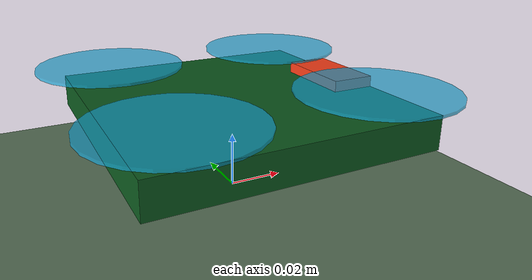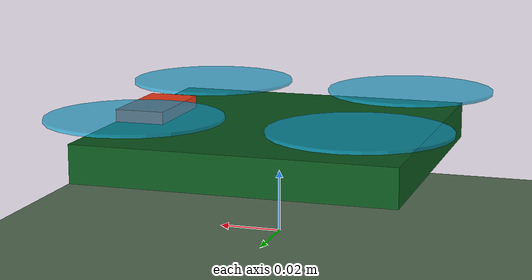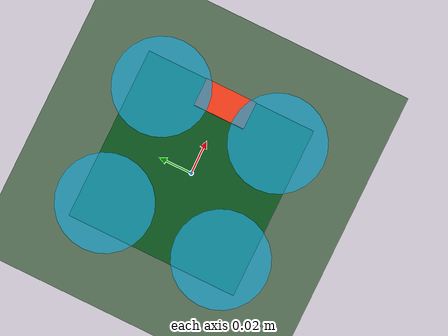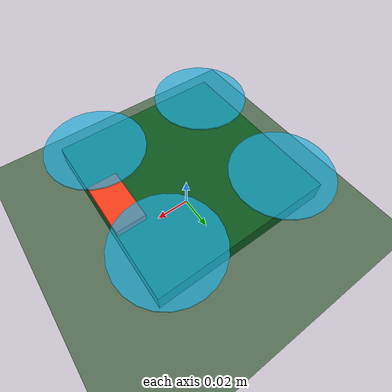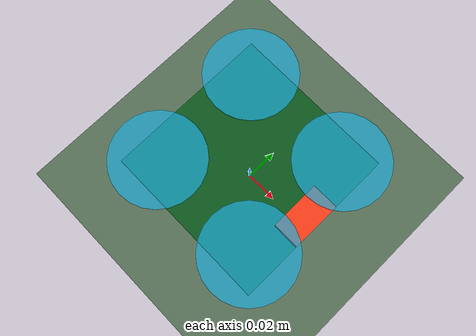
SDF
<?xml version="1.0" ?>
<sdf version="1.9">
  <world name="litewing">
    <physics name="1ms" type="ignored"><max_step_size>0.001</max_step_size>
      <real_time_factor>1.0</real_time_factor></physics>
    <plugin filename="gz-sim-physics-system" name="gz::sim::systems::Physics"/>
    <plugin filename="gz-sim-user-commands-system" name="gz::sim::systems::UserCommands"/>
    <plugin filename="gz-sim-scene-broadcaster-system" name="gz::sim::systems::SceneBroadcaster"/>
    <plugin filename="gz-sim-imu-system" name="gz::sim::systems::Imu"/>
    <gravity>0 0 -9.80665</gravity>
    <light type="directional" name="sun">
      <cast_shadows>true</cast_shadows><pose>0 0 10 0 0 0</pose>
      <diffuse>0.9 0.9 0.9 1</diffuse><specular>0.2 0.2 0.2 1</specular>
      <direction>-0.5 0.1 -0.9</direction>
    </light>
    <model name="ground_plane"><static>true</static>
      <link name="link">
        <collision name="c"><geometry><plane><normal>0 0 1</normal><size>50 50</size></plane></geometry></collision>
        <visual name="v"><geometry><plane><normal>0 0 1</normal><size>50 50</size></plane></geometry>
          <material><ambient>0.3 0.35 0.3 1</ambient><diffuse>0.35 0.45 0.35 1</diffuse></material></visual>
      </link>
    </model>

    <model name="litewing">
      <pose>0 0 0.03 0 0 0</pose>
      <link name="base_link">
        <inertial>
          <mass>0.055</mass>
          <!-- 100x100 mm PCB plate plus four corner motors -->
          <inertia><ixx>5.0e-05</ixx><ixy>0</ixy><ixz>0</ixz>
                   <iyy>5.0e-05</iyy><iyz>0</iyz><izz>9.5e-05</izz></inertia>
        </inertial>
        <collision name="c"><geometry><box><size>0.10 0.10 0.012</size></box></geometry></collision>
        <visual name="pcb"><geometry><box><size>0.10 0.10 0.012</size></box></geometry>
          <material><ambient>0.05 0.25 0.10 1</ambient><diffuse>0.05 0.35 0.12 1</diffuse></material></visual>
        <visual name="nose"><pose>0.042 0 0.008 0 0 0</pose>
          <geometry><box><size>0.016 0.03 0.004</size></box></geometry>
          <material><ambient>0.9 0.2 0.1 1</ambient><diffuse>1.0 0.25 0.1 1</diffuse></material></visual>
        <sensor name="imu_sensor" type="imu">
          <always_on>1</always_on><update_rate>500</update_rate>
          <topic>/litewing/imu</topic>
        </sensor>
      </link>
      <link name="rotor_0">
        <pose>0.035 0.035 0.012 0 0 0</pose>
        <inertial><mass>0.0005</mass>
          <inertia><ixx>1e-8</ixx><ixy>0</ixy><ixz>0</ixz>
                   <iyy>1e-8</iyy><iyz>0</iyz><izz>2e-8</izz></inertia>
        </inertial>
        <visual name="v"><geometry><cylinder><radius>0.0275</radius><length>0.001</length></cylinder></geometry>
          <material><ambient>0.1 0.7 0.9 0.7</ambient><diffuse>0.1 0.7 0.9 0.7</diffuse></material></visual>
      </link>
      <joint name="rotor_0_joint" type="revolute">
        <parent>base_link</parent><child>rotor_0</child>
        <axis><xyz>0 0 1</xyz><limit><lower>-1e16</lower><upper>1e16</upper></limit>
          <dynamics><damping>0.0</damping></dynamics></axis>
      </joint>
      <link name="rotor_1">
        <pose>0.035 -0.035 0.012 0 0 0</pose>
        <inertial><mass>0.0005</mass>
          <inertia><ixx>1e-8</ixx><ixy>0</ixy><ixz>0</ixz>
                   <iyy>1e-8</iyy><iyz>0</iyz><izz>2e-8</izz></inertia>
        </inertial>
        <visual name="v"><geometry><cylinder><radius>0.0275</radius><length>0.001</length></cylinder></geometry>
          <material><ambient>0.1 0.7 0.9 0.7</ambient><diffuse>0.1 0.7 0.9 0.7</diffuse></material></visual>
      </link>
      <joint name="rotor_1_joint" type="revolute">
        <parent>base_link</parent><child>rotor_1</child>
        <axis><xyz>0 0 1</xyz><limit><lower>-1e16</lower><upper>1e16</upper></limit>
          <dynamics><damping>0.0</damping></dynamics></axis>
      </joint>
      <link name="rotor_2">
        <pose>-0.035 -0.035 0.012 0 0 0</pose>
        <inertial><mass>0.0005</mass>
          <inertia><ixx>1e-8</ixx><ixy>0</ixy><ixz>0</ixz>
                   <iyy>1e-8</iyy><iyz>0</iyz><izz>2e-8</izz></inertia>
        </inertial>
        <visual name="v"><geometry><cylinder><radius>0.0275</radius><length>0.001</length></cylinder></geometry>
          <material><ambient>0.1 0.7 0.9 0.7</ambient><diffuse>0.1 0.7 0.9 0.7</diffuse></material></visual>
      </link>
      <joint name="rotor_2_joint" type="revolute">
        <parent>base_link</parent><child>rotor_2</child>
        <axis><xyz>0 0 1</xyz><limit><lower>-1e16</lower><upper>1e16</upper></limit>
          <dynamics><damping>0.0</damping></dynamics></axis>
      </joint>
      <link name="rotor_3">
        <pose>-0.035 0.035 0.012 0 0 0</pose>
        <inertial><mass>0.0005</mass>
          <inertia><ixx>1e-8</ixx><ixy>0</ixy><ixz>0</ixz>
                   <iyy>1e-8</iyy><iyz>0</iyz><izz>2e-8</izz></inertia>
        </inertial>
        <visual name="v"><geometry><cylinder><radius>0.0275</radius><length>0.001</length></cylinder></geometry>
          <material><ambient>0.1 0.7 0.9 0.7</ambient><diffuse>0.1 0.7 0.9 0.7</diffuse></material></visual>
      </link>
      <joint name="rotor_3_joint" type="revolute">
        <parent>base_link</parent><child>rotor_3</child>
        <axis><xyz>0 0 1</xyz><limit><lower>-1e16</lower><upper>1e16</upper></limit>
          <dynamics><damping>0.0</damping></dynamics></axis>
      </joint>
      <!-- M1 NW front-left -->
      <plugin filename="gz-sim-multicopter-motor-model-system"
              name="gz::sim::systems::MulticopterMotorModel">
        <robotNamespace>litewing</robotNamespace>
        <jointName>rotor_0_joint</jointName>
        <linkName>rotor_0</linkName>
        <turningDirection>cw</turningDirection>
        <timeConstantUp>0.0125</timeConstantUp>
        <timeConstantDown>0.025</timeConstantDown>
        <maxRotVelocity>3000.0</maxRotVelocity>
        <motorConstant>2.4e-08</motorConstant>
        <momentConstant>0.012</momentConstant>
        <commandSubTopic>gazebo/command/motor_speed</commandSubTopic>
        <actuator_number>0</actuator_number>
        <rotorDragCoefficient>2.0e-06</rotorDragCoefficient>
        <rollingMomentCoefficient>1e-08</rollingMomentCoefficient>
        <motorSpeedPubTopic>motor_speed/0</motorSpeedPubTopic>
        <motorType>velocity</motorType>
      </plugin>
      <!-- M2 NE front-right -->
      <plugin filename="gz-sim-multicopter-motor-model-system"
              name="gz::sim::systems::MulticopterMotorModel">
        <robotNamespace>litewing</robotNamespace>
        <jointName>rotor_1_joint</jointName>
        <linkName>rotor_1</linkName>
        <turningDirection>ccw</turningDirection>
        <timeConstantUp>0.0125</timeConstantUp>
        <timeConstantDown>0.025</timeConstantDown>
        <maxRotVelocity>3000.0</maxRotVelocity>
        <motorConstant>2.4e-08</motorConstant>
        <momentConstant>0.012</momentConstant>
        <commandSubTopic>gazebo/command/motor_speed</commandSubTopic>
        <actuator_number>1</actuator_number>
        <rotorDragCoefficient>2.0e-06</rotorDragCoefficient>
        <rollingMomentCoefficient>1e-08</rollingMomentCoefficient>
        <motorSpeedPubTopic>motor_speed/1</motorSpeedPubTopic>
        <motorType>velocity</motorType>
      </plugin>
      <!-- M3 SE rear-right -->
      <plugin filename="gz-sim-multicopter-motor-model-system"
              name="gz::sim::systems::MulticopterMotorModel">
        <robotNamespace>litewing</robotNamespace>
        <jointName>rotor_2_joint</jointName>
        <linkName>rotor_2</linkName>
        <turningDirection>cw</turningDirection>
        <timeConstantUp>0.0125</timeConstantUp>
        <timeConstantDown>0.025</timeConstantDown>
        <maxRotVelocity>3000.0</maxRotVelocity>
        <motorConstant>2.4e-08</motorConstant>
        <momentConstant>0.012</momentConstant>
        <commandSubTopic>gazebo/command/motor_speed</commandSubTopic>
        <actuator_number>2</actuator_number>
        <rotorDragCoefficient>2.0e-06</rotorDragCoefficient>
        <rollingMomentCoefficient>1e-08</rollingMomentCoefficient>
        <motorSpeedPubTopic>motor_speed/2</motorSpeedPubTopic>
        <motorType>velocity</motorType>
      </plugin>
      <!-- M4 SW rear-left -->
      <plugin filename="gz-sim-multicopter-motor-model-system"
              name="gz::sim::systems::MulticopterMotorModel">
        <robotNamespace>litewing</robotNamespace>
        <jointName>rotor_3_joint</jointName>
        <linkName>rotor_3</linkName>
        <turningDirection>ccw</turningDirection>
        <timeConstantUp>0.0125</timeConstantUp>
        <timeConstantDown>0.025</timeConstantDown>
        <maxRotVelocity>3000.0</maxRotVelocity>
        <motorConstant>2.4e-08</motorConstant>
        <momentConstant>0.012</momentConstant>
        <commandSubTopic>gazebo/command/motor_speed</commandSubTopic>
        <actuator_number>3</actuator_number>
        <rotorDragCoefficient>2.0e-06</rotorDragCoefficient>
        <rollingMomentCoefficient>1e-08</rollingMomentCoefficient>
        <motorSpeedPubTopic>motor_speed/3</motorSpeedPubTopic>
        <motorType>velocity</motorType>
      </plugin>
    </model>
  </world>
</sdf>
